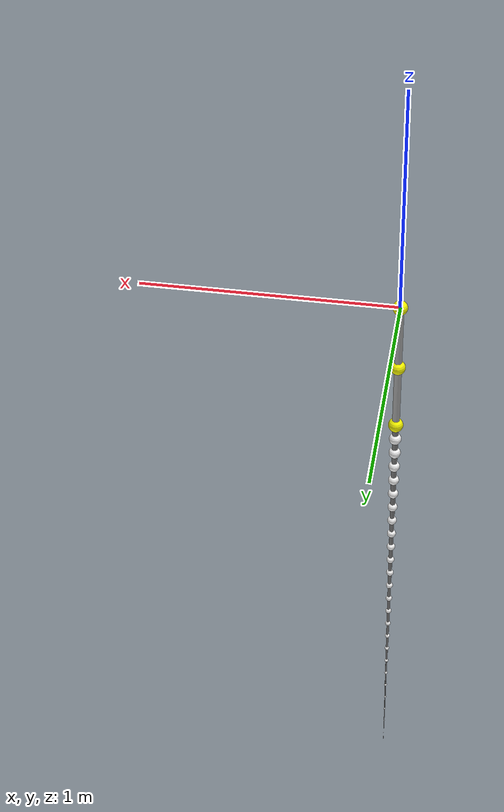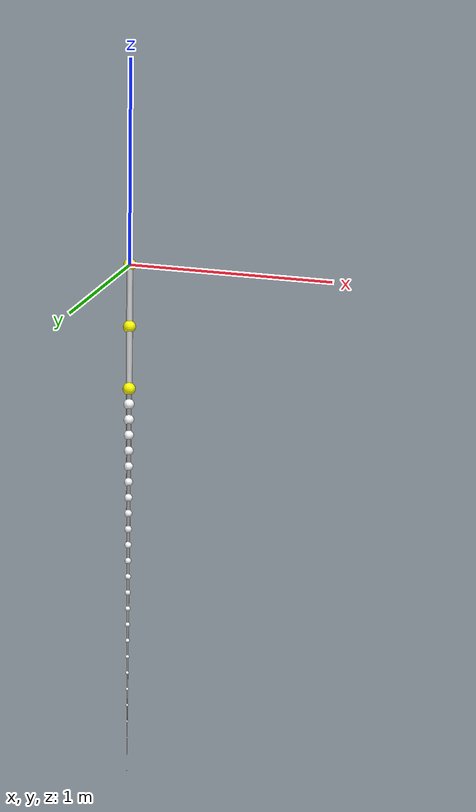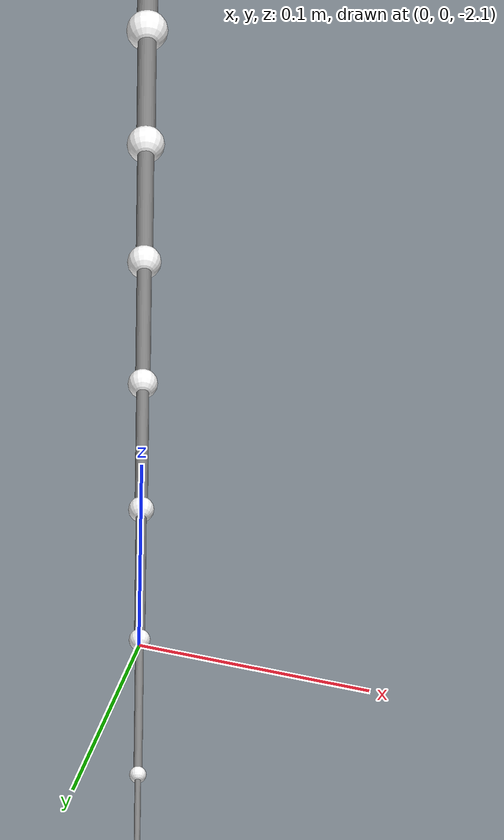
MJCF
<mujoco model="5_3D_model_w_N25_linear">
  <compiler inertiafromgeom="auto" angle="radian" />
   <option timestep="0.0001" iterations="50" solver="PGS" integrator="Euler" gravity="0 0 -9.81" collision="all">
     <flag energy="enable" />
   </option>
   <asset>
     <texture type="skybox" builtin="flat" rgb1="1 1 1" rgb2="1 1 1" width="100" height="100" />
      <material name="JointColor" rgba="1.0 1.0 0.0 1" />
      <material name="LimbColor" rgba="0.7 0.7 0.7 1" />
      <material name="pointMassColor" rgba="1.0 1.0 1.0 1.0" />
      <material name="RefMassColor" rgba="0.2 0.9 0.1 1.0" />
   </asset>
   <worldbody>
     <body name="cameramover" mocap="true" pos="0 0 0">
        <camera name="mycamera" pos="0.0 2.0 2.0" euler="1.5707 0 0" />
      </body>
      <body name="upperArm" pos="0 0 0" euler="0 0 0">
        <inertial pos="0 0 -0.129" mass="1.595" diaginertia="0.011917 0.011937 0.001325" />
         <geom name="shoulderGEOM" type="sphere" pos="0 0 0" material="JointColor" size="0.0294" mass="0" />
         <joint name="shoulderFlexExt" ref="0" type="hinge" stiffness="0" pos="0 0 0" axis="0 -1 0" />
         <joint name="shoulderAddAbd" ref="0" type="hinge" stiffness="0" pos="0 0 0" axis="-1 0 0" />
         <joint name="shoulderMedLat" ref="0" type="hinge" stiffness="0" pos="0 0 0" axis=" 0 0 1" />
         <site name="upperArmCOM" pos="0 0 -0.129" />
         <geom type="cylinder" fromto="0 0 0 0 0 -0.294" material="LimbColor" mass="0" size="0.0147" />
         <body name="foreArm" pos="0 0 -0.294" euler="0 0 0">
           <inertial pos="0 0 -0.112" mass="0.869" diaginertia="0.004765 0.004855 0.000472" />
            <geom name="elbowGEOM" type="sphere" pos="0 0 0" material="JointColor" size="0.0294" mass="0" />
            <joint name="elbow" ref="0" type="hinge" stiffness="0" pos="0 0 0" axis="0 -1 0" />
            <geom type="cylinder" fromto="0 0 0 0 0 -0.291" material="LimbColor" mass="0" size="0.0147" />
            <site name="foreArmCOM" pos="0 0 -0.112" />
            <geom name="geom_EE" type="sphere" pos="0 0 -0.291" material="JointColor" size="0.0294" mass="0" />
            <body name="node1" euler="0 0 0" pos="0 0 -0.291">
              <joint name="node1JointX" type="hinge" axis="1 0 0" pos="0 0 0" springref="0" stiffness="0" damping="0" />
               <joint name="node1JointY" type="hinge" axis="0 -1 0" pos="0 0 0" springref="0" stiffness="0" damping="0" />
               <geom type="cylinder" fromto="0 0 0 0 0 -0.0720" size="0.0122176" mass="0" />
               <geom name="geom1" type="sphere" material="pointMassColor" pos="0 0 -0.0720" size="0.0244352" mass="0.0345792" />
               <body name="node2" euler="0 0 0" pos="0 0 -0.0720">
                 <joint name="node2JointX" type="hinge" axis="1 0 0" pos="0 0 0" springref="0" stiffness="0.6415903999999999" damping="0.24391039999999997" />
                  <joint name="node2JointY" type="hinge" axis="0 -1 0" pos="0 0 0" springref="0" stiffness="0.6415903999999999" damping="0.24391039999999997" />
                  <geom type="cylinder" fromto="0 0 0 0 0 -0.0720" size="0.0117189" mass="0" />
                  <geom name="geom2" type="sphere" material="pointMassColor" pos="0 0 -0.0720" size="0.0234379" mass="0.0318144" />
                  <body name="node3" euler="0 0 0" pos="0 0 -0.0720">
                    <joint name="node3JointX" type="hinge" axis="1 0 0" pos="0 0 0" springref="0" stiffness="0.5881568" damping="0.2235968" />
                     <joint name="node3JointY" type="hinge" axis="0 -1 0" pos="0 0 0" springref="0" stiffness="0.5881568" damping="0.2235968" />
                     <geom type="cylinder" fromto="0 0 0 0 0 -0.0720" size="0.0112203" mass="0" />
                     <geom name="geom3" type="sphere" material="pointMassColor" pos="0 0 -0.0720" size="0.0224405" mass="0.0291648" />
                     <body name="node4" euler="0 0 0" pos="0 0 -0.0720">
                       <joint name="node4JointX" type="hinge" axis="1 0 0" pos="0 0 0" springref="0" stiffness="0.5370463999999999" damping="0.20416639999999997" />
                        <joint name="node4JointY" type="hinge" axis="0 -1 0" pos="0 0 0" springref="0" stiffness="0.5370463999999999" damping="0.20416639999999997" />
                        <geom type="cylinder" fromto="0 0 0 0 0 -0.0720" size="0.0107216" mass="0" />
                        <geom name="geom4" type="sphere" material="pointMassColor" pos="0 0 -0.0720" size="0.0214431" mass="0.0266304" />
                        <body name="node5" euler="0 0 0" pos="0 0 -0.0720">
                          <joint name="node5JointX" type="hinge" axis="1 0 0" pos="0 0 0" springref="0" stiffness="0.4882591999999999" damping="0.18561919999999998" />
                           <joint name="node5JointY" type="hinge" axis="0 -1 0" pos="0 0 0" springref="0" stiffness="0.4882591999999999" damping="0.18561919999999998" />
                           <geom type="cylinder" fromto="0 0 0 0 0 -0.0720" size="0.0102229" mass="0" />
                           <geom name="geom5" type="sphere" material="pointMassColor" pos="0 0 -0.0720" size="0.0204458" mass="0.0242112" />
                           <body name="node6" euler="0 0 0" pos="0 0 -0.0720">
                             <joint name="node6JointX" type="hinge" axis="1 0 0" pos="0 0 0" springref="0" stiffness="0.44179519999999994" damping="0.16795519999999997" />
                              <joint name="node6JointY" type="hinge" axis="0 -1 0" pos="0 0 0" springref="0" stiffness="0.44179519999999994" damping="0.16795519999999997" />
                              <geom type="cylinder" fromto="0 0 0 0 0 -0.0720" size="0.0097242" mass="0" />
                              <geom name="geom6" type="sphere" material="pointMassColor" pos="0 0 -0.0720" size="0.0194484" mass="0.0219072" />
                              <body name="node7" euler="0 0 0" pos="0 0 -0.0720">
                                <joint name="node7JointX" type="hinge" axis="1 0 0" pos="0 0 0" springref="0" stiffness="0.3976544" damping="0.15117440000000001" />
                                 <joint name="node7JointY" type="hinge" axis="0 -1 0" pos="0 0 0" springref="0" stiffness="0.3976544" damping="0.15117440000000001" />
                                 <geom type="cylinder" fromto="0 0 0 0 0 -0.0720" size="0.0092255" mass="0" />
                                 <geom name="geom7" type="sphere" material="pointMassColor" pos="0 0 -0.0720" size="0.0184511" mass="0.0197184" />
                                 <body name="node8" euler="0 0 0" pos="0 0 -0.0720">
                                   <joint name="node8JointX" type="hinge" axis="1 0 0" pos="0 0 0" springref="0" stiffness="0.3558368000000003" damping="0.13527680000000009" />
                                    <joint name="node8JointY" type="hinge" axis="0 -1 0" pos="0 0 0" springref="0" stiffness="0.3558368000000003" damping="0.13527680000000009" />
                                    <geom type="cylinder" fromto="0 0 0 0 0 -0.0720" size="0.0087269" mass="0" />
                                    <geom name="geom8" type="sphere" material="pointMassColor" pos="0 0 -0.0720" size="0.0174537" mass="0.0176448" />
                                    <body name="node9" euler="0 0 0" pos="0 0 -0.0720">
                                      <joint name="node9JointX" type="hinge" axis="1 0 0" pos="0 0 0" springref="0" stiffness="0.3163424000000002" damping="0.12026240000000007" />
                                       <joint name="node9JointY" type="hinge" axis="0 -1 0" pos="0 0 0" springref="0" stiffness="0.3163424000000002" damping="0.12026240000000007" />
                                       <geom type="cylinder" fromto="0 0 0 0 0 -0.0720" size="0.0082282" mass="0" />
                                       <geom name="geom9" type="sphere" material="pointMassColor" pos="0 0 -0.0720" size="0.0164564" mass="0.0156864" />
                                       <body name="node10" euler="0 0 0" pos="0 0 -0.0720">
                                         <joint name="node10JointX" type="hinge" axis="1 0 0" pos="0 0 0" springref="0" stiffness="0.2791711999999996" damping="0.10613119999999986" />
                                          <joint name="node10JointY" type="hinge" axis="0 -1 0" pos="0 0 0" springref="0" stiffness="0.2791711999999996" damping="0.10613119999999986" />
                                          <geom type="cylinder" fromto="0 0 0 0 0 -0.0720" size="0.0077295" mass="0" />
                                          <geom name="geom10" type="sphere" material="pointMassColor" pos="0 0 -0.0720" size="0.0154590" mass="0.0138432" />
                                          <body name="node11" euler="0 0 0" pos="0 0 -0.0720">
                                            <joint name="node11JointX" type="hinge" axis="1 0 0" pos="0 0 0" springref="0" stiffness="0.24432320000000013" damping="0.09288320000000005" />
                                             <joint name="node11JointY" type="hinge" axis="0 -1 0" pos="0 0 0" springref="0" stiffness="0.24432320000000013" damping="0.09288320000000005" />
                                             <geom type="cylinder" fromto="0 0 0 0 0 -0.0720" size="0.0072308" mass="0" />
                                             <geom name="geom11" type="sphere" material="pointMassColor" pos="0 0 -0.0720" size="0.0144617" mass="0.0121152" />
                                             <body name="node12" euler="0 0 0" pos="0 0 -0.0720">
                                               <joint name="node12JointX" type="hinge" axis="1 0 0" pos="0 0 0" springref="0" stiffness="0.21179840000000016" damping="0.08051840000000006" />
                                                <joint name="node12JointY" type="hinge" axis="0 -1 0" pos="0 0 0" springref="0" stiffness="0.21179840000000016" damping="0.08051840000000006" />
                                                <geom type="cylinder" fromto="0 0 0 0 0 -0.0720" size="0.0067322" mass="0" />
                                                <geom name="geom12" type="sphere" material="pointMassColor" pos="0 0 -0.0720" size="0.0134643" mass="0.0105024" />
                                                <body name="node13" euler="0 0 0" pos="0 0 -0.0720">
                                                  <joint name="node13JointX" type="hinge" axis="1 0 0" pos="0 0 0" springref="0" stiffness="0.1815968000000001" damping="0.06903680000000004" />
                                                   <joint name="node13JointY" type="hinge" axis="0 -1 0" pos="0 0 0" springref="0" stiffness="0.1815968000000001" damping="0.06903680000000004" />
                                                   <geom type="cylinder" fromto="0 0 0 0 0 -0.0720" size="0.0062335" mass="0" />
                                                   <geom name="geom13" type="sphere" material="pointMassColor" pos="0 0 -0.0720" size="0.0124669" mass="0.0090048" />
                                                   <body name="node14" euler="0 0 0" pos="0 0 -0.0720">
                                                     <joint name="node14JointX" type="hinge" axis="1 0 0" pos="0 0 0" springref="0" stiffness="0.15371840000000014" damping="0.05843840000000006" />
                                                      <joint name="node14JointY" type="hinge" axis="0 -1 0" pos="0 0 0" springref="0" stiffness="0.15371840000000014" damping="0.05843840000000006" />
                                                      <geom type="cylinder" fromto="0 0 0 0 0 -0.0720" size="0.0057348" mass="0" />
                                                      <geom name="geom14" type="sphere" material="pointMassColor" pos="0 0 -0.0720" size="0.0114696" mass="0.0076224" />
                                                      <body name="node15" euler="0 0 0" pos="0 0 -0.0720">
                                                        <joint name="node15JointX" type="hinge" axis="1 0 0" pos="0 0 0" springref="0" stiffness="0.12816320000000012" damping="0.04872320000000004" />
                                                         <joint name="node15JointY" type="hinge" axis="0 -1 0" pos="0 0 0" springref="0" stiffness="0.12816320000000012" damping="0.04872320000000004" />
                                                         <geom type="cylinder" fromto="0 0 0 0 0 -0.0720" size="0.0052361" mass="0" />
                                                         <geom name="geom15" type="sphere" material="pointMassColor" pos="0 0 -0.0720" size="0.0104722" mass="0.0063552" />
                                                         <body name="node16" euler="0 0 0" pos="0 0 -0.0720">
                                                           <joint name="node16JointX" type="hinge" axis="1 0 0" pos="0 0 0" springref="0" stiffness="0.10493120000000007" damping="0.03989120000000002" />
                                                            <joint name="node16JointY" type="hinge" axis="0 -1 0" pos="0 0 0" springref="0" stiffness="0.10493120000000007" damping="0.03989120000000002" />
                                                            <geom type="cylinder" fromto="0 0 0 0 0 -0.0720" size="0.0047374" mass="0" />
                                                            <geom name="geom16" type="sphere" material="pointMassColor" pos="0 0 -0.0720" size="0.0094749" mass="0.0052032" />
                                                            <body name="node17" euler="0 0 0" pos="0 0 -0.0720">
                                                              <joint name="node17JointX" type="hinge" axis="1 0 0" pos="0 0 0" springref="0" stiffness="0.08402240000000002" damping="0.03194240000000001" />
                                                               <joint name="node17JointY" type="hinge" axis="0 -1 0" pos="0 0 0" springref="0" stiffness="0.08402240000000002" damping="0.03194240000000001" />
                                                               <geom type="cylinder" fromto="0 0 0 0 0 -0.0720" size="0.0042388" mass="0" />
                                                               <geom name="geom17" type="sphere" material="pointMassColor" pos="0 0 -0.0720" size="0.0084775" mass="0.0041664" />
                                                               <body name="node18" euler="0 0 0" pos="0 0 -0.0720">
                                                                 <joint name="node18JointX" type="hinge" axis="1 0 0" pos="0 0 0" springref="0" stiffness="0.06543680000000003" damping="0.024876800000000008" />
                                                                  <joint name="node18JointY" type="hinge" axis="0 -1 0" pos="0 0 0" springref="0" stiffness="0.06543680000000003" damping="0.024876800000000008" />
                                                                  <geom type="cylinder" fromto="0 0 0 0 0 -0.0720" size="0.0037401" mass="0" />
                                                                  <geom name="geom18" type="sphere" material="pointMassColor" pos="0 0 -0.0720" size="0.0074802" mass="0.0032448" />
                                                                  <body name="node19" euler="0 0 0" pos="0 0 -0.0720">
                                                                    <joint name="node19JointX" type="hinge" axis="1 0 0" pos="0 0 0" springref="0" stiffness="0.049174400000000035" damping="0.018694400000000014" />
                                                                     <joint name="node19JointY" type="hinge" axis="0 -1 0" pos="0 0 0" springref="0" stiffness="0.049174400000000035" damping="0.018694400000000014" />
                                                                     <geom type="cylinder" fromto="0 0 0 0 0 -0.0720" size="0.0032414" mass="0" />
                                                                     <geom name="geom19" type="sphere" material="pointMassColor" pos="0 0 -0.0720" size="0.0064828" mass="0.0024384" />
                                                                     <body name="node20" euler="0 0 0" pos="0 0 -0.0720">
                                                                       <joint name="node20JointX" type="hinge" axis="1 0 0" pos="0 0 0" springref="0" stiffness="0.03523520000000002" damping="0.013395200000000008" />
                                                                        <joint name="node20JointY" type="hinge" axis="0 -1 0" pos="0 0 0" springref="0" stiffness="0.03523520000000002" damping="0.013395200000000008" />
                                                                        <geom type="cylinder" fromto="0 0 0 0 0 -0.0720" size="0.0027427" mass="0" />
                                                                        <geom name="geom20" type="sphere" material="pointMassColor" pos="0 0 -0.0720" size="0.0054855" mass="0.0017472" />
                                                                        <body name="node21" euler="0 0 0" pos="0 0 -0.0720">
                                                                          <joint name="node21JointX" type="hinge" axis="1 0 0" pos="0 0 0" springref="0" stiffness="0.0236192" damping="0.0089792" />
                                                                           <joint name="node21JointY" type="hinge" axis="0 -1 0" pos="0 0 0" springref="0" stiffness="0.0236192" damping="0.0089792" />
                                                                           <geom type="cylinder" fromto="0 0 0 0 0 -0.0720" size="0.0022441" mass="0" />
                                                                           <geom name="geom21" type="sphere" material="pointMassColor" pos="0 0 -0.0720" size="0.0044881" mass="0.0011712" />
                                                                           <body name="node22" euler="0 0 0" pos="0 0 -0.0720">
                                                                             <joint name="node22JointX" type="hinge" axis="1 0 0" pos="0 0 0" springref="0" stiffness="0.014326400000000017" damping="0.005446400000000007" />
                                                                              <joint name="node22JointY" type="hinge" axis="0 -1 0" pos="0 0 0" springref="0" stiffness="0.014326400000000017" damping="0.005446400000000007" />
                                                                              <geom type="cylinder" fromto="0 0 0 0 0 -0.0720" size="0.0017454" mass="0" />
                                                                              <geom name="geom22" type="sphere" material="pointMassColor" pos="0 0 -0.0720" size="0.0034907" mass="0.0007104" />
                                                                              <body name="node23" euler="0 0 0" pos="0 0 -0.0720">
                                                                                <joint name="node23JointX" type="hinge" axis="1 0 0" pos="0 0 0" springref="0" stiffness="0.007356800000000006" damping="0.002796800000000002" />
                                                                                 <joint name="node23JointY" type="hinge" axis="0 -1 0" pos="0 0 0" springref="0" stiffness="0.007356800000000006" damping="0.002796800000000002" />
                                                                                 <geom type="cylinder" fromto="0 0 0 0 0 -0.0720" size="0.0012467" mass="0" />
                                                                                 <geom name="geom23" type="sphere" material="pointMassColor" pos="0 0 -0.0720" size="0.0024934" mass="0.0003648" />
                                                                                 <body name="node24" euler="0 0 0" pos="0 0 -0.0720">
                                                                                   <joint name="node24JointX" type="hinge" axis="1 0 0" pos="0 0 0" springref="0" stiffness="0.002710400000000001" damping="0.0010304000000000003" />
                                                                                    <joint name="node24JointY" type="hinge" axis="0 -1 0" pos="0 0 0" springref="0" stiffness="0.002710400000000001" damping="0.0010304000000000003" />
                                                                                    <geom type="cylinder" fromto="0 0 0 0 0 -0.0720" size="0.0007480" mass="0" />
                                                                                    <geom name="geom24" type="sphere" material="pointMassColor" pos="0 0 -0.0720" size="0.0014960" mass="0.0001344" />
                                                                                    <body name="node25" euler="0 0 0" pos="0 0 -0.0720">
                                                                                      <joint name="node25JointX" type="hinge" axis="1 0 0" pos="0 0 0" springref="0" stiffness="0.0003871999999999983" damping="0.00014719999999999935" />
                                                                                       <joint name="node25JointY" type="hinge" axis="0 -1 0" pos="0 0 0" springref="0" stiffness="0.0003871999999999983" damping="0.00014719999999999935" />
                                                                                       <geom type="cylinder" fromto="0 0 0 0 0 -0.0720" size="0.0002493" mass="0" />
                                                                                       <geom name="geom25Tip" type="sphere" material="pointMassColor" pos="0 0 -0.0720" size="0.0004987" mass="0.0000192" />
                                                                                    </body>
                                                                                 </body>
                                                                              </body>
                                                                           </body>
                                                                        </body>
                                                                     </body>
                                                                  </body>
                                                               </body>
                                                            </body>
                                                         </body>
                                                      </body>
                                                   </body>
                                                </body>
                                             </body>
                                          </body>
                                       </body>
                                    </body>
                                 </body>
                              </body>
                           </body>
                        </body>
                     </body>
                  </body>
               </body>
            </body>
            <!-- === [ N, L, M, k, b, rho ] = [25,1.800000,0.300000,0.242000,0.092000,1.000000] -->
         </body>
      </body>
   </worldbody>
   <actuator>
     <motor joint="shoulderFlexExt" name="shoulderFlexExtTorqueMotor" forcelimited="false" />
      <motor joint="shoulderAddAbd" name="shoulderAddAbdTorqueMotor" forcelimited="false" />
      <motor joint="shoulderMedLat" name="shoulderMedLatTorqueMotor" forcelimited="false" />
      <motor joint="elbow" name="elbowTorqueMotor" forcelimited="false" />
   </actuator>
</mujoco>
